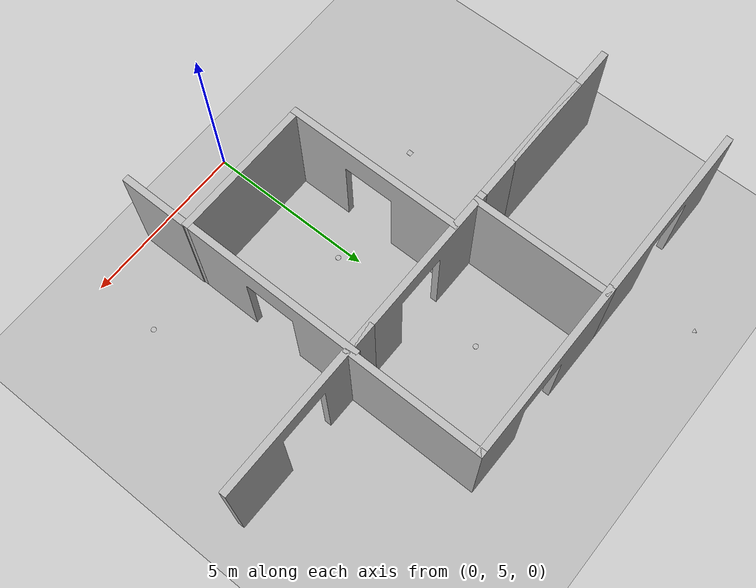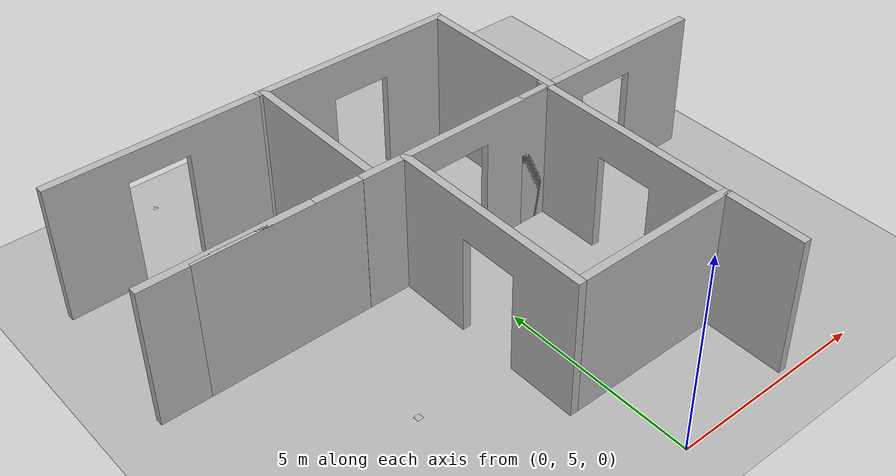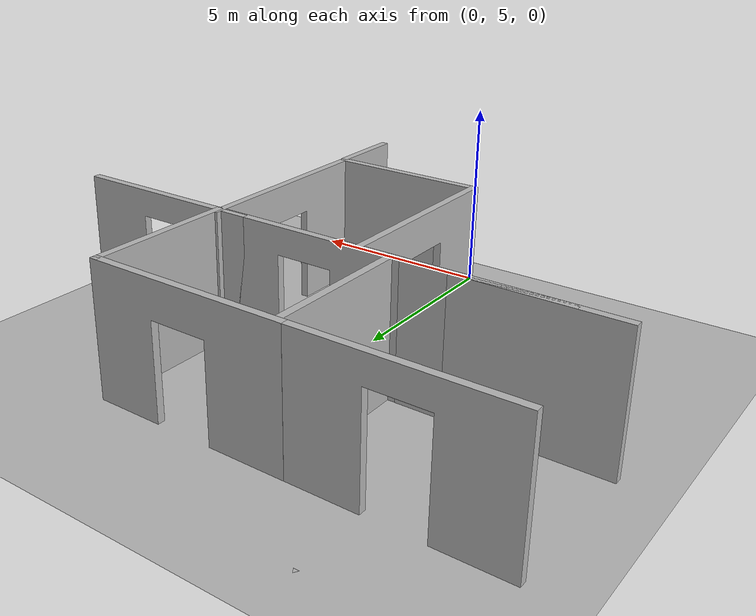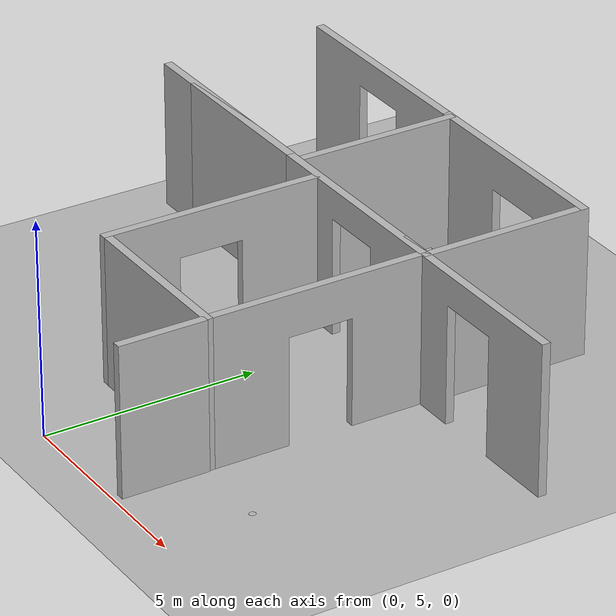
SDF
<sdf version="1.5">
 <world name="default">
  <physics type="ode">
   <max_step_size>0.004</max_step_size>
   <real_time_factor>1.0</real_time_factor>
   <real_time_update_rate>250</real_time_update_rate>
  </physics>
  <plugin name="gz::sim::systems::Physics" filename="gz-sim-physics-system"/>
  <plugin name="gz::sim::systems::UserCommands" filename="gz-sim-user-commands-system"/>
  <plugin name="gz::sim::systems::SceneBroadcaster" filename="gz-sim-scene-broadcaster-system"/>
  <plugin name="gz::sim::systems::Contact" filename="gz-sim-contact-system"/>
  <plugin name="gz::sim::systems::Imu" filename="gz-sim-imu-system"/>
  <plugin name="gz::sim::systems::AirPressure" filename="gz-sim-air-pressure-system"/>
  <plugin name="gz::sim::systems::ApplyLinkWrench" filename="gz-sim-apply-link-wrench-system"/>
  <plugin name="gz::sim::systems::NavSat" filename="gz-sim-navsat-system"/>
  <plugin name="gz::sim::systems::Sensors" filename="gz-sim-sensors-system">
   <render_engine>ogre2</render_engine>
  </plugin>
  <gravity>0 0 -9.8</gravity>
  <magnetic_field>6e-06 2.3e-05 -4.2e-05</magnetic_field>
  <atmosphere type="adiabatic"/>
  <scene>
   <grid>false</grid>
   <ambient>0.4 0.4 0.4 1</ambient>
   <background>0.7 0.7 0.7 1</background>
   <shadows>true</shadows>
  </scene>
  <spherical_coordinates>
   <surface_model>EARTH_WGS84</surface_model>
   <world_frame_orientation>ENU</world_frame_orientation>
   <latitude_deg>47.397971057728974</latitude_deg>
   <longitude_deg>8.546163739800146</longitude_deg>
   <elevation>0</elevation>
  </spherical_coordinates>
  <light type="directional" name="sun">
   <pose>0 0 10 0 0 0</pose>
   <diffuse>0.8 0.8 0.8 1</diffuse>
   <specular>0.8 0.8 0.8 1</specular>
   <attenuation>
    <range>1000</range>
    <constant>0.9</constant>
    <linear>0.01</linear>
    <quadratic>0.001</quadratic>
   </attenuation>
   <direction>-0.5 0.1 -0.9</direction>
  </light>
  <include><uri>model://ground_my</uri><pose relative_to="world">0 0 0 0 0 0</pose></include>
  <include>
   <name>wall_w_win_1</name>
   <uri>model://house_scene_1_wall_w_window</uri>
   <static>true</static>
   <pose>-2.243223 13.283944 0 0 0 1.567493</pose>
  </include>
  <include>
   <name>wall_w_win_2</name>
   <uri>model://house_scene_1_wall_w_window</uri>
   <static>true</static>
   <pose>0.083877 12.639949 0 0 0 0</pose>
  </include>
  <include>
   <name>wall_w_win_3</name>
   <uri>model://house_scene_1_wall_w_window</uri>
   <static>true</static>
   <pose>-3.983081 12.464193 0 0 0 0</pose>
  </include>
  <include>
   <name>wall_w_door_1</name>
   <uri>model://house_scene_1_wall_w_door</uri>
   <static>true</static>
   <pose>-5.389788 12.134013 0 0 0 0</pose>
  </include>
  <include>
   <name>wall_w_door_2</name>
   <uri>model://house_scene_1_wall_w_door</uri>
   <static>true</static>
   <pose>-0.273567 8.225039 0 0 0 0</pose>
  </include>
  <include>
   <name>wall_w_door_3</name>
   <uri>model://house_scene_1_wall_w_door</uri>
   <static>true</static>
   <pose>4.144635 8.225039 0 0 0 0</pose>
  </include>
  <include>
   <name>wall_1</name>
   <uri>model://house_scene_1_wall</uri>
   <static>true</static>
   <pose>0.995554 7.159050 0 0 0 0</pose>
  </include>
  <include>
   <name>wall_2</name>
   <uri>model://house_scene_1_wall</uri>
   <static>true</static>
   <pose>-1.921930 14.302383 0 0 0 -1.570796</pose>
  </include>
  <include>
   <name>wall_3</name>
   <uri>model://house_scene_1_wall</uri>
   <static>true</static>
   <pose>-5.499550 12.299837 0 0 0 0</pose>
  </include>
  <include>
   <name>wall_4</name>
   <uri>model://house_scene_1_wall</uri>
   <static>true</static>
   <pose>-4.311431 12.298409 0 0 0 0</pose>
  </include>
  <include>
   <name>wall_5</name>
   <uri>model://house_scene_1_wall</uri>
   <static>true</static>
   <pose>3.070581 14.176468 0 0 0 1.570840</pose>
  </include>
  <include>
   <name>wall_small_1</name>
   <uri>model://house_scene_1_wall_small</uri>
   <static>true</static>
   <pose>3.024304 6.060440 0 0 0 1.570796</pose>
  </include>
  <include>
   <name>figure_circle_blue</name>
   <uri>model://figure_circle_blue</uri>
   <static>true</static>
   <pose>0.3 9.5 0.125 0 0 0</pose>
  </include>
  <include>
   <name>figure_circle_green</name>
   <uri>model://figure_circle_green</uri>
   <static>true</static>
   <pose>0.0 14 0.124 0 0 0</pose>
  </include>
  <include>
   <name>figure_circle_red</name>
   <uri>model://figure_circle_red</uri>
   <static>true</static>
   <pose>5 7 0.125 0 0 0</pose>
  </include>
  <include>
   <name>figure_square_green</name>
   <uri>model://figure_square_green</uri>
   <static>true</static>
   <pose>-3.5 9 0.124 0 0 0</pose>
  </include>
  <include>
   <name>figure_triangle_red</name>
   <uri>model://figure_triangle_red</uri>
   <static>true</static>
   <pose>-4 18.3 0.124 0 0 0</pose>
  </include>
 </world>
</sdf>

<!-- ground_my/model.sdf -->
<sdf version="1.5">
    <model name="ground">
        <static>true</static>
        <link name="link">
            <collision name="collision">
                <geometry>
                    <mesh>
                        <scale>1 1 1</scale>
                        <uri>model://ground_my/meshes/ground.dae</uri>
                    </mesh>
                    <surface>
                    <friction>
                        <ode>
                            <mu>1.2</mu>
                            <mu2>1.2</mu2>
                        </ode>
                    </friction>
                    </surface>
                </geometry>
            </collision>
            <visual name="visual">
              <geometry>
                <mesh>
                    <scale>1 1 1</scale>
                    <uri>model://ground_my/meshes/ground.dae</uri>
                </mesh>
              </geometry>
             </visual>
        </link>
    </model>
</sdf>

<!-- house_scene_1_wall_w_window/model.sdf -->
<sdf version="1.5">
    <model name="house3">
        <static>true</static>
        <link name="link">
            <collision name="collision1">
                <pose>0 0 0 0 0 0</pose>
                <geometry>
                    <mesh>
                        <uri>model://house_scene_1_wall_w_window/meshes/scene_1_wall_w_window.dae</uri>
                    </mesh>
                </geometry>
            </collision>
            <visual name="visual_walls3">
              <pose>0 0 0 0 0 0</pose>
              <geometry>
              <mesh>
                 <uri>model://house_scene_1_wall_w_window/meshes/scene_1_wall_w_window.dae</uri>
              </mesh>
              </geometry>
             </visual>
        </link>
    </model>
</sdf>

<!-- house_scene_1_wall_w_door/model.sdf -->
<sdf version="1.5">
    <model name="house2">
        <static>true</static>
        <link name="link">
            <collision name="collision1">
                <pose>0 0 0 0 0 0</pose>
                <geometry>
                    <mesh>
                        <uri>model://house_scene_1_wall_w_door/meshes/scene_1_wall_w_door.dae</uri>
                    </mesh>
                </geometry>
            </collision>
            <visual name="visual_walls2">
              <pose>0 0 0 0 0 0</pose>
              <geometry>
              <mesh>
                 <uri>model://house_scene_1_wall_w_door/meshes/scene_1_wall_w_door.dae</uri>
              </mesh>
              </geometry>
             </visual>
        </link>
    </model>
</sdf>

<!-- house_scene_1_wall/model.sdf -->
<sdf version="1.5">
    <model name="house1">
        <static>true</static>
        <link name="link">
            <collision name="collision1">
                <pose>0 0 0 0 0 0</pose>
                <geometry>
                    <mesh>
                        <uri>model://house_scene_1_wall/meshes/scene_1_wall.dae</uri>
                    </mesh>
                </geometry>
            </collision>
            <visual name="visual_walls1">
              <pose>0 0 0 0 0 0</pose>
              <geometry>
              <mesh>
                 <uri>model://house_scene_1_wall/meshes/scene_1_wall.dae</uri>
              </mesh>
              </geometry>
             </visual>
        </link>
    </model>
</sdf>

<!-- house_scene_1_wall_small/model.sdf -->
<sdf version="1.5">
    <model name="house1_small">
        <static>true</static>
        <link name="link">
            <collision name="collision1">
                <pose>0 0 0 0 0 0</pose>
                <geometry>
                    <mesh>
                        <uri>model://house_scene_1_wall_small/meshes/scene_1_wall_small.dae</uri>
                    </mesh>
                </geometry>
            </collision>
            <visual name="visual_walls1">
              <pose>0 0 0 0 0 0</pose>
              <geometry>
              <mesh>
                 <uri>model://house_scene_1_wall_small/meshes/scene_1_wall_small.dae</uri>
              </mesh>
              </geometry>
             </visual>
        </link>
    </model>
</sdf>

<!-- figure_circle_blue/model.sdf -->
<sdf version="1.5">
    <model name="figure_circle_blue">
        <static>true</static>
        <link name="link">
            <collision name="collision1">
                <pose>0 0 0 0 0 0</pose>
                <geometry>
                    <mesh>
                        <uri>model://figure_circle_blue/meshes/figure_circle_blue.dae</uri>
                        <scale>0.15 0.15 0.15</scale>
                    </mesh>
                </geometry>
            </collision>
            <visual name="visual1">
                <pose>0 0 0 0 0 0</pose>
                <geometry>
                    <mesh>
                        <uri>model://figure_circle_blue/meshes/figure_circle_blue.dae</uri>
                        <scale>0.15 0.15 0.15</scale>
                    </mesh>
                </geometry>
            </visual>
        </link>
    </model>
</sdf>

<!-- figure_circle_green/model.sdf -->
<sdf version="1.5">
    <model name="figure_circle_green">
        <static>true</static>
        <link name="link">
            <collision name="collision1">
                <pose>0 0 0 0 0 0</pose>
                <geometry>
                    <mesh>
                        <uri>model://figure_circle_green/meshes/figure_circle_green.dae</uri>
                        <scale>0.15 0.15 0.15</scale>
                    </mesh>
                </geometry>
            </collision>
            <visual name="visual1">
                <pose>0 0 0 0 0 0</pose>
                <geometry>
                    <mesh>
                        <uri>model://figure_circle_green/meshes/figure_circle_green.dae</uri>
                        <scale>0.15 0.15 0.15</scale>
                    </mesh>
                </geometry>
            </visual>
        </link>
    </model>
</sdf>

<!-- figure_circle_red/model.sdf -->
<sdf version="1.5">
    <model name="figure_circle_red">
        <static>true</static>
        <link name="link">
            <collision name="collision1">
                <pose>0 0 0 0 0 0</pose>
                <geometry>
                    <mesh>
                        <uri>model://figure_circle_red/meshes/figure_circle_red.dae</uri>
                        <scale>0.15 0.15 0.15</scale>
                    </mesh>
                </geometry>
            </collision>
            <visual name="visual1">
                <pose>0 0 0 0 0 0</pose>
                <geometry>
                    <mesh>
                        <uri>model://figure_circle_red/meshes/figure_circle_red.dae</uri>
                        <scale>0.15 0.15 0.15</scale>
                    </mesh>
                </geometry>
            </visual>
        </link>
    </model>
</sdf>

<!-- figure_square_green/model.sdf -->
<sdf version="1.5">
    <model name="figure_square_green">
        <static>true</static>
        <link name="link">
            <collision name="collision1">
                <pose>0 0 0 0 0 0</pose>
                <geometry>
                    <mesh>
                        <uri>model://figure_square_green/meshes/figure_square_green.dae</uri>
                        <scale>0.15 0.15 0.15</scale>
                    </mesh>
                </geometry>
            </collision>
            <visual name="visual1">
                <pose>0 0 0 0 0 0</pose>
                <geometry>
                    <mesh>
                        <uri>model://figure_square_green/meshes/figure_square_green.dae</uri>
                        <scale>0.15 0.15 0.15</scale>
                    </mesh>
                </geometry>
            </visual>
        </link>
    </model>
</sdf>

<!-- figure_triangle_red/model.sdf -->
<sdf version="1.5">
    <model name="figure_triangle_red">
        <static>true</static>
        <link name="link">
            <collision name="collision1">
                <pose>0 0 0 0 0 0</pose>
                <geometry>
                    <mesh>
                        <uri>model://figure_triangle_red/meshes/figure_triangle_red.dae</uri>
                        <scale>0.15 0.15 0.15</scale>
                    </mesh>
                </geometry>
            </collision>
            <visual name="visual1">
                <pose>0 0 0 0 0 0</pose>
                <geometry>
                    <mesh>
                        <uri>model://figure_triangle_red/meshes/figure_triangle_red.dae</uri>
                        <scale>0.15 0.15 0.15</scale>
                    </mesh>
                </geometry>
            </visual>
        </link>
    </model>
</sdf>
